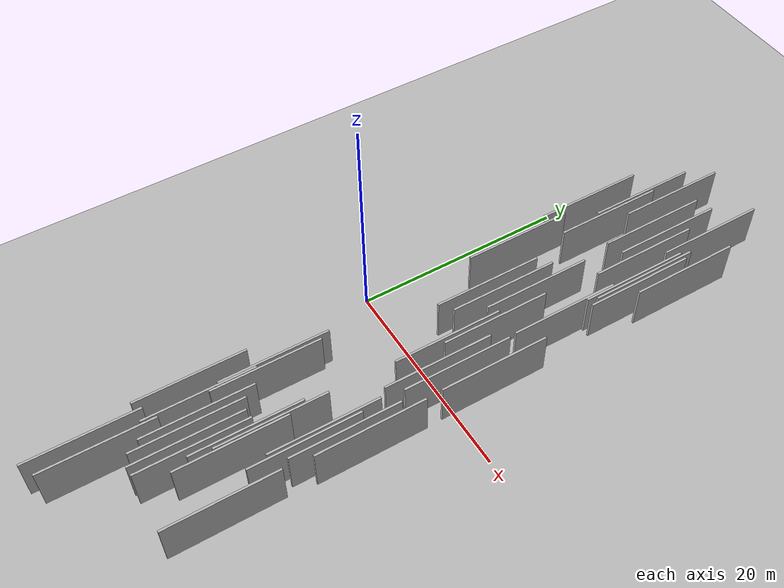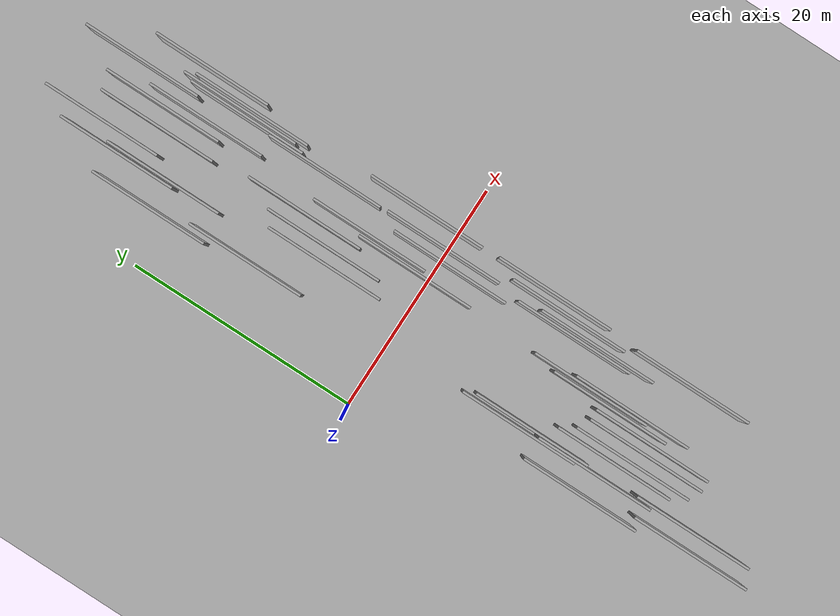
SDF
<?xml version="1.0" encoding="utf-8"?>

<sdf version="1.6">

   <world name="default">

      <gui fullscreen="0">

         <camera name="user_camera">

            <pose>-15 0 4.57585 0 0 0</pose>

            <view_controller>orbit</view_controller>

         </camera>

      </gui>

      <scene>

         <sky>

           <clouds>

             <speed>12</speed>

           </clouds>

         </sky>

         <ambient>0.4 0.4 0.4 1</ambient>

         <background>0.7 0.7 0.7 1</background>

         <shadows>1</shadows>

      </scene>

      <gravity>0 0 -9.8066</gravity>

      <magnetic_field>6e-06 2.3e-05 -4.2e-05</magnetic_field>

      <physics default="0" name="default_physics" type="ode">

         <ode>

            <solver>

               <type>quick</type>

               <iters>10</iters>

               <sor>1.0</sor>

               <use_dynamic_moi_rescaling>0</use_dynamic_moi_rescaling>

            </solver>

            <constraints>

               <cfm>0</cfm>

               <erp>0.2</erp>

               <contact_max_correcting_vel>100</contact_max_correcting_vel>

               <contact_surface_layer>0.001</contact_surface_layer>

            </constraints>

         </ode>

         <max_step_size>0.004</max_step_size>

         <real_time_factor>1</real_time_factor>

         <real_time_update_rate>250</real_time_update_rate>

      </physics>

      <light name="sun" type="directional">

         <cast_shadows>1</cast_shadows>

         <pose>0 0 10 0 0 0</pose>

         <diffuse>0.8 0.8 0.8 1</diffuse>

         <specular>0.2 0.2 0.2 1</specular>

         <attenuation>

            <range>1000</range>

            <constant>0.9</constant>

            <linear>0.01</linear>

            <quadratic>0.001</quadratic>

         </attenuation>

         <direction>-0.5 0.1 -0.9</direction>

      </light>

      <include>

         <name>ground_plane_1</name>

         <uri>model://HANNAS_ground_plane</uri>

         <pose>0 0 0  0 0 0</pose>

      </include>

      <include>

         <name>ground_plane_2</name>

         <uri>model://HANNAS_ground_plane</uri>

         <pose>100 0 0  0 0 0</pose>

      </include>

      <model name="HANNAS_wall_1">

         <static>1</static>

         <pose frame="">12.4541 20.6578 2.5 0.000000 0.000000 1.570796</pose>

         <link name="link">

            <pose frame="">0 0 2.00 0 0 0</pose>

            <collision name="collision">

               <geometry>

                  <box>

                     <size>10.00 0.2 4.00</size>

                  </box>

               </geometry>

               <max_contacts>10</max_contacts>

               <surface>

                  <contact>

                     <ode/>

                  </contact>

                  <bounce/>

                  <friction>

                     <torsional>

                        <ode/>

                     </torsional>

                     <ode/>

                  </friction>

               </surface>

            </collision>

            <visual name="visual">

               <cast_shadows>0</cast_shadows>

               <geometry>

                  <box>

                     <size>10.00 0.2 4.00</size>

                  </box>

               </geometry>

               <material>

                  <script>

                     <uri>model://HANNAS_wall/materials/scripts</uri>

                     <uri>model://HANNAS_wall/materials/textures</uri>

                     <name>vrc/HANNAS_wall</name>

                  </script>

               </material>

            </visual>

            <self_collide>0</self_collide>

            <enable_wind>0</enable_wind>

            <kinematic>0</kinematic>

         </link>

      </model>

      <model name="HANNAS_wall_2">

         <static>1</static>

         <pose frame="">13.5971 27.1170 2.5 0.000000 0.000000 1.570796</pose>

         <link name="link">

            <pose frame="">0 0 2.00 0 0 0</pose>

            <collision name="collision">

               <geometry>

                  <box>

                     <size>10.00 0.2 4.00</size>

                  </box>

               </geometry>

               <max_contacts>10</max_contacts>

               <surface>

                  <contact>

                     <ode/>

                  </contact>

                  <bounce/>

                  <friction>

                     <torsional>

                        <ode/>

                     </torsional>

                     <ode/>

                  </friction>

               </surface>

            </collision>

            <visual name="visual">

               <cast_shadows>0</cast_shadows>

               <geometry>

                  <box>

                     <size>10.00 0.2 4.00</size>

                  </box>

               </geometry>

               <material>

                  <script>

                     <uri>model://HANNAS_wall/materials/scripts</uri>

                     <uri>model://HANNAS_wall/materials/textures</uri>

                     <name>vrc/HANNAS_wall</name>

                  </script>

               </material>

            </visual>

            <self_collide>0</self_collide>

            <enable_wind>0</enable_wind>

            <kinematic>0</kinematic>

         </link>

      </model>

      <model name="HANNAS_wall_3">

         <static>1</static>

         <pose frame="">6.0778 -18.3121 2.5 0.000000 0.000000 1.570796</pose>

         <link name="link">

            <pose frame="">0 0 2.00 0 0 0</pose>

            <collision name="collision">

               <geometry>

                  <box>

                     <size>10.00 0.2 4.00</size>

                  </box>

               </geometry>

               <max_contacts>10</max_contacts>

               <surface>

                  <contact>

                     <ode/>

                  </contact>

                  <bounce/>

                  <friction>

                     <torsional>

                        <ode/>

                     </torsional>

                     <ode/>

                  </friction>

               </surface>

            </collision>

            <visual name="visual">

               <cast_shadows>0</cast_shadows>

               <geometry>

                  <box>

                     <size>10.00 0.2 4.00</size>

                  </box>

               </geometry>

               <material>

                  <script>

                     <uri>model://HANNAS_wall/materials/scripts</uri>

                     <uri>model://HANNAS_wall/materials/textures</uri>

                     <name>vrc/HANNAS_wall</name>

                  </script>

               </material>

            </visual>

            <self_collide>0</self_collide>

            <enable_wind>0</enable_wind>

            <kinematic>0</kinematic>

         </link>

      </model>

      <model name="HANNAS_wall_4">

         <static>1</static>

         <pose frame="">15.9182 22.3405 2.5 0.000000 0.000000 1.570796</pose>

         <link name="link">

            <pose frame="">0 0 2.00 0 0 0</pose>

            <collision name="collision">

               <geometry>

                  <box>

                     <size>10.00 0.2 4.00</size>

                  </box>

               </geometry>

               <max_contacts>10</max_contacts>

               <surface>

                  <contact>

                     <ode/>

                  </contact>

                  <bounce/>

                  <friction>

                     <torsional>

                        <ode/>

                     </torsional>

                     <ode/>

                  </friction>

               </surface>

            </collision>

            <visual name="visual">

               <cast_shadows>0</cast_shadows>

               <geometry>

                  <box>

                     <size>10.00 0.2 4.00</size>

                  </box>

               </geometry>

               <material>

                  <script>

                     <uri>model://HANNAS_wall/materials/scripts</uri>

                     <uri>model://HANNAS_wall/materials/textures</uri>

                     <name>vrc/HANNAS_wall</name>

                  </script>

               </material>

            </visual>

            <self_collide>0</self_collide>

            <enable_wind>0</enable_wind>

            <kinematic>0</kinematic>

         </link>

      </model>

      <model name="HANNAS_wall_5">

         <static>1</static>

         <pose frame="">8.2808 -20.3169 2.5 0.000000 0.000000 1.570796</pose>

         <link name="link">

            <pose frame="">0 0 2.00 0 0 0</pose>

            <collision name="collision">

               <geometry>

                  <box>

                     <size>10.00 0.2 4.00</size>

                  </box>

               </geometry>

               <max_contacts>10</max_contacts>

               <surface>

                  <contact>

                     <ode/>

                  </contact>

                  <bounce/>

                  <friction>

                     <torsional>

                        <ode/>

                     </torsional>

                     <ode/>

                  </friction>

               </surface>

            </collision>

            <visual name="visual">

               <cast_shadows>0</cast_shadows>

               <geometry>

                  <box>

                     <size>10.00 0.2 4.00</size>

                  </box>

               </geometry>

               <material>

                  <script>

                     <uri>model://HANNAS_wall/materials/scripts</uri>

                     <uri>model://HANNAS_wall/materials/textures</uri>

                     <name>vrc/HANNAS_wall</name>

                  </script>

               </material>

            </visual>

            <self_collide>0</self_collide>

            <enable_wind>0</enable_wind>

            <kinematic>0</kinematic>

         </link>

      </model>

      <model name="HANNAS_wall_6">

         <static>1</static>

         <pose frame="">4.9916 -27.6208 2.5 0.000000 0.000000 1.570796</pose>

         <link name="link">

            <pose frame="">0 0 2.00 0 0 0</pose>

            <collision name="collision">

               <geometry>

                  <box>

                     <size>10.00 0.2 4.00</size>

                  </box>

               </geometry>

               <max_contacts>10</max_contacts>

               <surface>

                  <contact>

                     <ode/>

                  </contact>

                  <bounce/>

                  <friction>

                     <torsional>

                        <ode/>

                     </torsional>

                     <ode/>

                  </friction>

               </surface>

            </collision>

            <visual name="visual">

               <cast_shadows>0</cast_shadows>

               <geometry>

                  <box>

                     <size>10.00 0.2 4.00</size>

                  </box>

               </geometry>

               <material>

                  <script>

                     <uri>model://HANNAS_wall/materials/scripts</uri>

                     <uri>model://HANNAS_wall/materials/textures</uri>

                     <name>vrc/HANNAS_wall</name>

                  </script>

               </material>

            </visual>

            <self_collide>0</self_collide>

            <enable_wind>0</enable_wind>

            <kinematic>0</kinematic>

         </link>

      </model>

      <model name="HANNAS_wall_7">

         <static>1</static>

         <pose frame="">14.3110 18.1891 2.5 0.000000 0.000000 1.570796</pose>

         <link name="link">

            <pose frame="">0 0 2.00 0 0 0</pose>

            <collision name="collision">

               <geometry>

                  <box>

                     <size>10.00 0.2 4.00</size>

                  </box>

               </geometry>

               <max_contacts>10</max_contacts>

               <surface>

                  <contact>

                     <ode/>

                  </contact>

                  <bounce/>

                  <friction>

                     <torsional>

                        <ode/>

                     </torsional>

                     <ode/>

                  </friction>

               </surface>

            </collision>

            <visual name="visual">

               <cast_shadows>0</cast_shadows>

               <geometry>

                  <box>

                     <size>10.00 0.2 4.00</size>

                  </box>

               </geometry>

               <material>

                  <script>

                     <uri>model://HANNAS_wall/materials/scripts</uri>

                     <uri>model://HANNAS_wall/materials/textures</uri>

                     <name>vrc/HANNAS_wall</name>

                  </script>

               </material>

            </visual>

            <self_collide>0</self_collide>

            <enable_wind>0</enable_wind>

            <kinematic>0</kinematic>

         </link>

      </model>

      <model name="HANNAS_wall_8">

         <static>1</static>

         <pose frame="">15.8094 -8.4592 2.5 0.000000 0.000000 1.570796</pose>

         <link name="link">

            <pose frame="">0 0 2.00 0 0 0</pose>

            <collision name="collision">

               <geometry>

                  <box>

                     <size>10.00 0.2 4.00</size>

                  </box>

               </geometry>

               <max_contacts>10</max_contacts>

               <surface>

                  <contact>

                     <ode/>

                  </contact>

                  <bounce/>

                  <friction>

                     <torsional>

                        <ode/>

                     </torsional>

                     <ode/>

                  </friction>

               </surface>

            </collision>

            <visual name="visual">

               <cast_shadows>0</cast_shadows>

               <geometry>

                  <box>

                     <size>10.00 0.2 4.00</size>

                  </box>

               </geometry>

               <material>

                  <script>

                     <uri>model://HANNAS_wall/materials/scripts</uri>

                     <uri>model://HANNAS_wall/materials/textures</uri>

                     <name>vrc/HANNAS_wall</name>

                  </script>

               </material>

            </visual>

            <self_collide>0</self_collide>

            <enable_wind>0</enable_wind>

            <kinematic>0</kinematic>

         </link>

      </model>

      <model name="HANNAS_wall_9">

         <static>1</static>

         <pose frame="">9.3929 8.1544 2.5 0.000000 0.000000 1.570796</pose>

         <link name="link">

            <pose frame="">0 0 2.00 0 0 0</pose>

            <collision name="collision">

               <geometry>

                  <box>

                     <size>10.00 0.2 4.00</size>

                  </box>

               </geometry>

               <max_contacts>10</max_contacts>

               <surface>

                  <contact>

                     <ode/>

                  </contact>

                  <bounce/>

                  <friction>

                     <torsional>

                        <ode/>

                     </torsional>

                     <ode/>

                  </friction>

               </surface>

            </collision>

            <visual name="visual">

               <cast_shadows>0</cast_shadows>

               <geometry>

                  <box>

                     <size>10.00 0.2 4.00</size>

                  </box>

               </geometry>

               <material>

                  <script>

                     <uri>model://HANNAS_wall/materials/scripts</uri>

                     <uri>model://HANNAS_wall/materials/textures</uri>

                     <name>vrc/HANNAS_wall</name>

                  </script>

               </material>

            </visual>

            <self_collide>0</self_collide>

            <enable_wind>0</enable_wind>

            <kinematic>0</kinematic>

         </link>

      </model>

      <model name="HANNAS_wall_10">

         <static>1</static>

         <pose frame="">11.5870 23.9540 2.5 0.000000 0.000000 1.570796</pose>

         <link name="link">

            <pose frame="">0 0 2.00 0 0 0</pose>

            <collision name="collision">

               <geometry>

                  <box>

                     <size>10.00 0.2 4.00</size>

                  </box>

               </geometry>

               <max_contacts>10</max_contacts>

               <surface>

                  <contact>

                     <ode/>

                  </contact>

                  <bounce/>

                  <friction>

                     <torsional>

                        <ode/>

                     </torsional>

                     <ode/>

                  </friction>

               </surface>

            </collision>

            <visual name="visual">

               <cast_shadows>0</cast_shadows>

               <geometry>

                  <box>

                     <size>10.00 0.2 4.00</size>

                  </box>

               </geometry>

               <material>

                  <script>

                     <uri>model://HANNAS_wall/materials/scripts</uri>

                     <uri>model://HANNAS_wall/materials/textures</uri>

                     <name>vrc/HANNAS_wall</name>

                  </script>

               </material>

            </visual>

            <self_collide>0</self_collide>

            <enable_wind>0</enable_wind>

            <kinematic>0</kinematic>

         </link>

      </model>

      <model name="HANNAS_wall_11">

         <static>1</static>

         <pose frame="">6.7561 24.9841 2.5 0.000000 0.000000 1.570796</pose>

         <link name="link">

            <pose frame="">0 0 2.00 0 0 0</pose>

            <collision name="collision">

               <geometry>

                  <box>

                     <size>10.00 0.2 4.00</size>

                  </box>

               </geometry>

               <max_contacts>10</max_contacts>

               <surface>

                  <contact>

                     <ode/>

                  </contact>

                  <bounce/>

                  <friction>

                     <torsional>

                        <ode/>

                     </torsional>

                     <ode/>

                  </friction>

               </surface>

            </collision>

            <visual name="visual">

               <cast_shadows>0</cast_shadows>

               <geometry>

                  <box>

                     <size>10.00 0.2 4.00</size>

                  </box>

               </geometry>

               <material>

                  <script>

                     <uri>model://HANNAS_wall/materials/scripts</uri>

                     <uri>model://HANNAS_wall/materials/textures</uri>

                     <name>vrc/HANNAS_wall</name>

                  </script>

               </material>

            </visual>

            <self_collide>0</self_collide>

            <enable_wind>0</enable_wind>

            <kinematic>0</kinematic>

         </link>

      </model>

      <model name="HANNAS_wall_12">

         <static>1</static>

         <pose frame="">4.5698 20.7180 2.5 0.000000 0.000000 1.570796</pose>

         <link name="link">

            <pose frame="">0 0 2.00 0 0 0</pose>

            <collision name="collision">

               <geometry>

                  <box>

                     <size>10.00 0.2 4.00</size>

                  </box>

               </geometry>

               <max_contacts>10</max_contacts>

               <surface>

                  <contact>

                     <ode/>

                  </contact>

                  <bounce/>

                  <friction>

                     <torsional>

                        <ode/>

                     </torsional>

                     <ode/>

                  </friction>

               </surface>

            </collision>

            <visual name="visual">

               <cast_shadows>0</cast_shadows>

               <geometry>

                  <box>

                     <size>10.00 0.2 4.00</size>

                  </box>

               </geometry>

               <material>

                  <script>

                     <uri>model://HANNAS_wall/materials/scripts</uri>

                     <uri>model://HANNAS_wall/materials/textures</uri>

                     <name>vrc/HANNAS_wall</name>

                  </script>

               </material>

            </visual>

            <self_collide>0</self_collide>

            <enable_wind>0</enable_wind>

            <kinematic>0</kinematic>

         </link>

      </model>

      <model name="HANNAS_wall_13">

         <static>1</static>

         <pose frame="">11.8927 5.6557 2.5 0.000000 0.000000 1.570796</pose>

         <link name="link">

            <pose frame="">0 0 2.00 0 0 0</pose>

            <collision name="collision">

               <geometry>

                  <box>

                     <size>10.00 0.2 4.00</size>

                  </box>

               </geometry>

               <max_contacts>10</max_contacts>

               <surface>

                  <contact>

                     <ode/>

                  </contact>

                  <bounce/>

                  <friction>

                     <torsional>

                        <ode/>

                     </torsional>

                     <ode/>

                  </friction>

               </surface>

            </collision>

            <visual name="visual">

               <cast_shadows>0</cast_shadows>

               <geometry>

                  <box>

                     <size>10.00 0.2 4.00</size>

                  </box>

               </geometry>

               <material>

                  <script>

                     <uri>model://HANNAS_wall/materials/scripts</uri>

                     <uri>model://HANNAS_wall/materials/textures</uri>

                     <name>vrc/HANNAS_wall</name>

                  </script>

               </material>

            </visual>

            <self_collide>0</self_collide>

            <enable_wind>0</enable_wind>

            <kinematic>0</kinematic>

         </link>

      </model>

      <model name="HANNAS_wall_14">

         <static>1</static>

         <pose frame="">10.6268 10.6538 2.5 0.000000 0.000000 1.570796</pose>

         <link name="link">

            <pose frame="">0 0 2.00 0 0 0</pose>

            <collision name="collision">

               <geometry>

                  <box>

                     <size>10.00 0.2 4.00</size>

                  </box>

               </geometry>

               <max_contacts>10</max_contacts>

               <surface>

                  <contact>

                     <ode/>

                  </contact>

                  <bounce/>

                  <friction>

                     <torsional>

                        <ode/>

                     </torsional>

                     <ode/>

                  </friction>

               </surface>

            </collision>

            <visual name="visual">

               <cast_shadows>0</cast_shadows>

               <geometry>

                  <box>

                     <size>10.00 0.2 4.00</size>

                  </box>

               </geometry>

               <material>

                  <script>

                     <uri>model://HANNAS_wall/materials/scripts</uri>

                     <uri>model://HANNAS_wall/materials/textures</uri>

                     <name>vrc/HANNAS_wall</name>

                  </script>

               </material>

            </visual>

            <self_collide>0</self_collide>

            <enable_wind>0</enable_wind>

            <kinematic>0</kinematic>

         </link>

      </model>

      <model name="HANNAS_wall_15">

         <static>1</static>

         <pose frame="">10.8824 -16.5831 2.5 0.000000 0.000000 1.570796</pose>

         <link name="link">

            <pose frame="">0 0 2.00 0 0 0</pose>

            <collision name="collision">

               <geometry>

                  <box>

                     <size>10.00 0.2 4.00</size>

                  </box>

               </geometry>

               <max_contacts>10</max_contacts>

               <surface>

                  <contact>

                     <ode/>

                  </contact>

                  <bounce/>

                  <friction>

                     <torsional>

                        <ode/>

                     </torsional>

                     <ode/>

                  </friction>

               </surface>

            </collision>

            <visual name="visual">

               <cast_shadows>0</cast_shadows>

               <geometry>

                  <box>

                     <size>10.00 0.2 4.00</size>

                  </box>

               </geometry>

               <material>

                  <script>

                     <uri>model://HANNAS_wall/materials/scripts</uri>

                     <uri>model://HANNAS_wall/materials/textures</uri>

                     <name>vrc/HANNAS_wall</name>

                  </script>

               </material>

            </visual>

            <self_collide>0</self_collide>

            <enable_wind>0</enable_wind>

            <kinematic>0</kinematic>

         </link>

      </model>

      <model name="HANNAS_wall_16">

         <static>1</static>

         <pose frame="">8.2525 7.3279 2.5 0.000000 0.000000 1.570796</pose>

         <link name="link">

            <pose frame="">0 0 2.00 0 0 0</pose>

            <collision name="collision">

               <geometry>

                  <box>

                     <size>10.00 0.2 4.00</size>

                  </box>

               </geometry>

               <max_contacts>10</max_contacts>

               <surface>

                  <contact>

                     <ode/>

                  </contact>

                  <bounce/>

                  <friction>

                     <torsional>

                        <ode/>

                     </torsional>

                     <ode/>

                  </friction>

               </surface>

            </collision>

            <visual name="visual">

               <cast_shadows>0</cast_shadows>

               <geometry>

                  <box>

                     <size>10.00 0.2 4.00</size>

                  </box>

               </geometry>

               <material>

                  <script>

                     <uri>model://HANNAS_wall/materials/scripts</uri>

                     <uri>model://HANNAS_wall/materials/textures</uri>

                     <name>vrc/HANNAS_wall</name>

                  </script>

               </material>

            </visual>

            <self_collide>0</self_collide>

            <enable_wind>0</enable_wind>

            <kinematic>0</kinematic>

         </link>

      </model>

      <model name="HANNAS_wall_17">

         <static>1</static>

         <pose frame="">10.2123 -20.7871 2.5 0.000000 0.000000 1.570796</pose>

         <link name="link">

            <pose frame="">0 0 2.00 0 0 0</pose>

            <collision name="collision">

               <geometry>

                  <box>

                     <size>10.00 0.2 4.00</size>

                  </box>

               </geometry>

               <max_contacts>10</max_contacts>

               <surface>

                  <contact>

                     <ode/>

                  </contact>

                  <bounce/>

                  <friction>

                     <torsional>

                        <ode/>

                     </torsional>

                     <ode/>

                  </friction>

               </surface>

            </collision>

            <visual name="visual">

               <cast_shadows>0</cast_shadows>

               <geometry>

                  <box>

                     <size>10.00 0.2 4.00</size>

                  </box>

               </geometry>

               <material>

                  <script>

                     <uri>model://HANNAS_wall/materials/scripts</uri>

                     <uri>model://HANNAS_wall/materials/textures</uri>

                     <name>vrc/HANNAS_wall</name>

                  </script>

               </material>

            </visual>

            <self_collide>0</self_collide>

            <enable_wind>0</enable_wind>

            <kinematic>0</kinematic>

         </link>

      </model>

      <model name="HANNAS_wall_18">

         <static>1</static>

         <pose frame="">14.6173 19.0087 2.5 0.000000 0.000000 1.570796</pose>

         <link name="link">

            <pose frame="">0 0 2.00 0 0 0</pose>

            <collision name="collision">

               <geometry>

                  <box>

                     <size>10.00 0.2 4.00</size>

                  </box>

               </geometry>

               <max_contacts>10</max_contacts>

               <surface>

                  <contact>

                     <ode/>

                  </contact>

                  <bounce/>

                  <friction>

                     <torsional>

                        <ode/>

                     </torsional>

                     <ode/>

                  </friction>

               </surface>

            </collision>

            <visual name="visual">

               <cast_shadows>0</cast_shadows>

               <geometry>

                  <box>

                     <size>10.00 0.2 4.00</size>

                  </box>

               </geometry>

               <material>

                  <script>

                     <uri>model://HANNAS_wall/materials/scripts</uri>

                     <uri>model://HANNAS_wall/materials/textures</uri>

                     <name>vrc/HANNAS_wall</name>

                  </script>

               </material>

            </visual>

            <self_collide>0</self_collide>

            <enable_wind>0</enable_wind>

            <kinematic>0</kinematic>

         </link>

      </model>

      <model name="HANNAS_wall_19">

         <static>1</static>

         <pose frame="">7.5287 -19.1301 2.5 0.000000 0.000000 1.570796</pose>

         <link name="link">

            <pose frame="">0 0 2.00 0 0 0</pose>

            <collision name="collision">

               <geometry>

                  <box>

                     <size>10.00 0.2 4.00</size>

                  </box>

               </geometry>

               <max_contacts>10</max_contacts>

               <surface>

                  <contact>

                     <ode/>

                  </contact>

                  <bounce/>

                  <friction>

                     <torsional>

                        <ode/>

                     </torsional>

                     <ode/>

                  </friction>

               </surface>

            </collision>

            <visual name="visual">

               <cast_shadows>0</cast_shadows>

               <geometry>

                  <box>

                     <size>10.00 0.2 4.00</size>

                  </box>

               </geometry>

               <material>

                  <script>

                     <uri>model://HANNAS_wall/materials/scripts</uri>

                     <uri>model://HANNAS_wall/materials/textures</uri>

                     <name>vrc/HANNAS_wall</name>

                  </script>

               </material>

            </visual>

            <self_collide>0</self_collide>

            <enable_wind>0</enable_wind>

            <kinematic>0</kinematic>

         </link>

      </model>

      <model name="HANNAS_wall_20">

         <static>1</static>

         <pose frame="">15.0005 -10.2229 2.5 0.000000 0.000000 1.570796</pose>

         <link name="link">

            <pose frame="">0 0 2.00 0 0 0</pose>

            <collision name="collision">

               <geometry>

                  <box>

                     <size>10.00 0.2 4.00</size>

                  </box>

               </geometry>

               <max_contacts>10</max_contacts>

               <surface>

                  <contact>

                     <ode/>

                  </contact>

                  <bounce/>

                  <friction>

                     <torsional>

                        <ode/>

                     </torsional>

                     <ode/>

                  </friction>

               </surface>

            </collision>

            <visual name="visual">

               <cast_shadows>0</cast_shadows>

               <geometry>

                  <box>

                     <size>10.00 0.2 4.00</size>

                  </box>

               </geometry>

               <material>

                  <script>

                     <uri>model://HANNAS_wall/materials/scripts</uri>

                     <uri>model://HANNAS_wall/materials/textures</uri>

                     <name>vrc/HANNAS_wall</name>

                  </script>

               </material>

            </visual>

            <self_collide>0</self_collide>

            <enable_wind>0</enable_wind>

            <kinematic>0</kinematic>

         </link>

      </model>

      <model name="HANNAS_wall_21">

         <static>1</static>

         <pose frame="">14.2171 -13.3017 2.5 0.000000 0.000000 1.570796</pose>

         <link name="link">

            <pose frame="">0 0 2.00 0 0 0</pose>

            <collision name="collision">

               <geometry>

                  <box>

                     <size>10.00 0.2 4.00</size>

                  </box>

               </geometry>

               <max_contacts>10</max_contacts>

               <surface>

                  <contact>

                     <ode/>

                  </contact>

                  <bounce/>

                  <friction>

                     <torsional>

                        <ode/>

                     </torsional>

                     <ode/>

                  </friction>

               </surface>

            </collision>

            <visual name="visual">

               <cast_shadows>0</cast_shadows>

               <geometry>

                  <box>

                     <size>10.00 0.2 4.00</size>

                  </box>

               </geometry>

               <material>

                  <script>

                     <uri>model://HANNAS_wall/materials/scripts</uri>

                     <uri>model://HANNAS_wall/materials/textures</uri>

                     <name>vrc/HANNAS_wall</name>

                  </script>

               </material>

            </visual>

            <self_collide>0</self_collide>

            <enable_wind>0</enable_wind>

            <kinematic>0</kinematic>

         </link>

      </model>

      <model name="HANNAS_wall_22">

         <static>1</static>

         <pose frame="">15.5839 -20.9502 2.5 0.000000 0.000000 1.570796</pose>

         <link name="link">

            <pose frame="">0 0 2.00 0 0 0</pose>

            <collision name="collision">

               <geometry>

                  <box>

                     <size>10.00 0.2 4.00</size>

                  </box>

               </geometry>

               <max_contacts>10</max_contacts>

               <surface>

                  <contact>

                     <ode/>

                  </contact>

                  <bounce/>

                  <friction>

                     <torsional>

                        <ode/>

                     </torsional>

                     <ode/>

                  </friction>

               </surface>

            </collision>

            <visual name="visual">

               <cast_shadows>0</cast_shadows>

               <geometry>

                  <box>

                     <size>10.00 0.2 4.00</size>

                  </box>

               </geometry>

               <material>

                  <script>

                     <uri>model://HANNAS_wall/materials/scripts</uri>

                     <uri>model://HANNAS_wall/materials/textures</uri>

                     <name>vrc/HANNAS_wall</name>

                  </script>

               </material>

            </visual>

            <self_collide>0</self_collide>

            <enable_wind>0</enable_wind>

            <kinematic>0</kinematic>

         </link>

      </model>

      <model name="HANNAS_wall_23">

         <static>1</static>

         <pose frame="">14.9914 18.1844 2.5 0.000000 0.000000 1.570796</pose>

         <link name="link">

            <pose frame="">0 0 2.00 0 0 0</pose>

            <collision name="collision">

               <geometry>

                  <box>

                     <size>10.00 0.2 4.00</size>

                  </box>

               </geometry>

               <max_contacts>10</max_contacts>

               <surface>

                  <contact>

                     <ode/>

                  </contact>

                  <bounce/>

                  <friction>

                     <torsional>

                        <ode/>

                     </torsional>

                     <ode/>

                  </friction>

               </surface>

            </collision>

            <visual name="visual">

               <cast_shadows>0</cast_shadows>

               <geometry>

                  <box>

                     <size>10.00 0.2 4.00</size>

                  </box>

               </geometry>

               <material>

                  <script>

                     <uri>model://HANNAS_wall/materials/scripts</uri>

                     <uri>model://HANNAS_wall/materials/textures</uri>

                     <name>vrc/HANNAS_wall</name>

                  </script>

               </material>

            </visual>

            <self_collide>0</self_collide>

            <enable_wind>0</enable_wind>

            <kinematic>0</kinematic>

         </link>

      </model>

      <model name="HANNAS_wall_24">

         <static>1</static>

         <pose frame="">9.3542 -20.8267 2.5 0.000000 0.000000 1.570796</pose>

         <link name="link">

            <pose frame="">0 0 2.00 0 0 0</pose>

            <collision name="collision">

               <geometry>

                  <box>

                     <size>10.00 0.2 4.00</size>

                  </box>

               </geometry>

               <max_contacts>10</max_contacts>

               <surface>

                  <contact>

                     <ode/>

                  </contact>

                  <bounce/>

                  <friction>

                     <torsional>

                        <ode/>

                     </torsional>

                     <ode/>

                  </friction>

               </surface>

            </collision>

            <visual name="visual">

               <cast_shadows>0</cast_shadows>

               <geometry>

                  <box>

                     <size>10.00 0.2 4.00</size>

                  </box>

               </geometry>

               <material>

                  <script>

                     <uri>model://HANNAS_wall/materials/scripts</uri>

                     <uri>model://HANNAS_wall/materials/textures</uri>

                     <name>vrc/HANNAS_wall</name>

                  </script>

               </material>

            </visual>

            <self_collide>0</self_collide>

            <enable_wind>0</enable_wind>

            <kinematic>0</kinematic>

         </link>

      </model>

      <model name="HANNAS_wall_25">

         <static>1</static>

         <pose frame="">4.1508 -18.2466 2.5 0.000000 0.000000 1.570796</pose>

         <link name="link">

            <pose frame="">0 0 2.00 0 0 0</pose>

            <collision name="collision">

               <geometry>

                  <box>

                     <size>10.00 0.2 4.00</size>

                  </box>

               </geometry>

               <max_contacts>10</max_contacts>

               <surface>

                  <contact>

                     <ode/>

                  </contact>

                  <bounce/>

                  <friction>

                     <torsional>

                        <ode/>

                     </torsional>

                     <ode/>

                  </friction>

               </surface>

            </collision>

            <visual name="visual">

               <cast_shadows>0</cast_shadows>

               <geometry>

                  <box>

                     <size>10.00 0.2 4.00</size>

                  </box>

               </geometry>

               <material>

                  <script>

                     <uri>model://HANNAS_wall/materials/scripts</uri>

                     <uri>model://HANNAS_wall/materials/textures</uri>

                     <name>vrc/HANNAS_wall</name>

                  </script>

               </material>

            </visual>

            <self_collide>0</self_collide>

            <enable_wind>0</enable_wind>

            <kinematic>0</kinematic>

         </link>

      </model>

      <model name="HANNAS_wall_26">

         <static>1</static>

         <pose frame="">13.1844 -0.7295 2.5 0.000000 0.000000 1.570796</pose>

         <link name="link">

            <pose frame="">0 0 2.00 0 0 0</pose>

            <collision name="collision">

               <geometry>

                  <box>

                     <size>10.00 0.2 4.00</size>

                  </box>

               </geometry>

               <max_contacts>10</max_contacts>

               <surface>

                  <contact>

                     <ode/>

                  </contact>

                  <bounce/>

                  <friction>

                     <torsional>

                        <ode/>

                     </torsional>

                     <ode/>

                  </friction>

               </surface>

            </collision>

            <visual name="visual">

               <cast_shadows>0</cast_shadows>

               <geometry>

                  <box>

                     <size>10.00 0.2 4.00</size>

                  </box>

               </geometry>

               <material>

                  <script>

                     <uri>model://HANNAS_wall/materials/scripts</uri>

                     <uri>model://HANNAS_wall/materials/textures</uri>

                     <name>vrc/HANNAS_wall</name>

                  </script>

               </material>

            </visual>

            <self_collide>0</self_collide>

            <enable_wind>0</enable_wind>

            <kinematic>0</kinematic>

         </link>

      </model>

      <model name="HANNAS_wall_27">

         <static>1</static>

         <pose frame="">10.0969 23.5168 2.5 0.000000 0.000000 1.570796</pose>

         <link name="link">

            <pose frame="">0 0 2.00 0 0 0</pose>

            <collision name="collision">

               <geometry>

                  <box>

                     <size>10.00 0.2 4.00</size>

                  </box>

               </geometry>

               <max_contacts>10</max_contacts>

               <surface>

                  <contact>

                     <ode/>

                  </contact>

                  <bounce/>

                  <friction>

                     <torsional>

                        <ode/>

                     </torsional>

                     <ode/>

                  </friction>

               </surface>

            </collision>

            <visual name="visual">

               <cast_shadows>0</cast_shadows>

               <geometry>

                  <box>

                     <size>10.00 0.2 4.00</size>

                  </box>

               </geometry>

               <material>

                  <script>

                     <uri>model://HANNAS_wall/materials/scripts</uri>

                     <uri>model://HANNAS_wall/materials/textures</uri>

                     <name>vrc/HANNAS_wall</name>

                  </script>

               </material>

            </visual>

            <self_collide>0</self_collide>

            <enable_wind>0</enable_wind>

            <kinematic>0</kinematic>

         </link>

      </model>

      <model name="HANNAS_wall_28">

         <static>1</static>

         <pose frame="">6.3050 -12.5777 2.5 0.000000 0.000000 1.570796</pose>

         <link name="link">

            <pose frame="">0 0 2.00 0 0 0</pose>

            <collision name="collision">

               <geometry>

                  <box>

                     <size>10.00 0.2 4.00</size>

                  </box>

               </geometry>

               <max_contacts>10</max_contacts>

               <surface>

                  <contact>

                     <ode/>

                  </contact>

                  <bounce/>

                  <friction>

                     <torsional>

                        <ode/>

                     </torsional>

                     <ode/>

                  </friction>

               </surface>

            </collision>

            <visual name="visual">

               <cast_shadows>0</cast_shadows>

               <geometry>

                  <box>

                     <size>10.00 0.2 4.00</size>

                  </box>

               </geometry>

               <material>

                  <script>

                     <uri>model://HANNAS_wall/materials/scripts</uri>

                     <uri>model://HANNAS_wall/materials/textures</uri>

                     <name>vrc/HANNAS_wall</name>

                  </script>

               </material>

            </visual>

            <self_collide>0</self_collide>

            <enable_wind>0</enable_wind>

            <kinematic>0</kinematic>

         </link>

      </model>

      <model name="HANNAS_wall_29">

         <static>1</static>

         <pose frame="">8.2125 27.2568 2.5 0.000000 0.000000 1.570796</pose>

         <link name="link">

            <pose frame="">0 0 2.00 0 0 0</pose>

            <collision name="collision">

               <geometry>

                  <box>

                     <size>10.00 0.2 4.00</size>

                  </box>

               </geometry>

               <max_contacts>10</max_contacts>

               <surface>

                  <contact>

                     <ode/>

                  </contact>

                  <bounce/>

                  <friction>

                     <torsional>

                        <ode/>

                     </torsional>

                     <ode/>

                  </friction>

               </surface>

            </collision>

            <visual name="visual">

               <cast_shadows>0</cast_shadows>

               <geometry>

                  <box>

                     <size>10.00 0.2 4.00</size>

                  </box>

               </geometry>

               <material>

                  <script>

                     <uri>model://HANNAS_wall/materials/scripts</uri>

                     <uri>model://HANNAS_wall/materials/textures</uri>

                     <name>vrc/HANNAS_wall</name>

                  </script>

               </material>

            </visual>

            <self_collide>0</self_collide>

            <enable_wind>0</enable_wind>

            <kinematic>0</kinematic>

         </link>

      </model>

      <model name="HANNAS_wall_30">

         <static>1</static>

         <pose frame="">11.2568 -14.6252 2.5 0.000000 0.000000 1.570796</pose>

         <link name="link">

            <pose frame="">0 0 2.00 0 0 0</pose>

            <collision name="collision">

               <geometry>

                  <box>

                     <size>10.00 0.2 4.00</size>

                  </box>

               </geometry>

               <max_contacts>10</max_contacts>

               <surface>

                  <contact>

                     <ode/>

                  </contact>

                  <bounce/>

                  <friction>

                     <torsional>

                        <ode/>

                     </torsional>

                     <ode/>

                  </friction>

               </surface>

            </collision>

            <visual name="visual">

               <cast_shadows>0</cast_shadows>

               <geometry>

                  <box>

                     <size>10.00 0.2 4.00</size>

                  </box>

               </geometry>

               <material>

                  <script>

                     <uri>model://HANNAS_wall/materials/scripts</uri>

                     <uri>model://HANNAS_wall/materials/textures</uri>

                     <name>vrc/HANNAS_wall</name>

                  </script>

               </material>

            </visual>

            <self_collide>0</self_collide>

            <enable_wind>0</enable_wind>

            <kinematic>0</kinematic>

         </link>

      </model>

      <model name="HANNAS_wall_31">

         <static>1</static>

         <pose frame="">6.3940 -26.9403 2.5 0.000000 0.000000 1.570796</pose>

         <link name="link">

            <pose frame="">0 0 2.00 0 0 0</pose>

            <collision name="collision">

               <geometry>

                  <box>

                     <size>10.00 0.2 4.00</size>

                  </box>

               </geometry>

               <max_contacts>10</max_contacts>

               <surface>

                  <contact>

                     <ode/>

                  </contact>

                  <bounce/>

                  <friction>

                     <torsional>

                        <ode/>

                     </torsional>

                     <ode/>

                  </friction>

               </surface>

            </collision>

            <visual name="visual">

               <cast_shadows>0</cast_shadows>

               <geometry>

                  <box>

                     <size>10.00 0.2 4.00</size>

                  </box>

               </geometry>

               <material>

                  <script>

                     <uri>model://HANNAS_wall/materials/scripts</uri>

                     <uri>model://HANNAS_wall/materials/textures</uri>

                     <name>vrc/HANNAS_wall</name>

                  </script>

               </material>

            </visual>

            <self_collide>0</self_collide>

            <enable_wind>0</enable_wind>

            <kinematic>0</kinematic>

         </link>

      </model>

      <model name="HANNAS_wall_32">

         <static>1</static>

         <pose frame="">13.8480 -11.4380 2.5 0.000000 0.000000 1.570796</pose>

         <link name="link">

            <pose frame="">0 0 2.00 0 0 0</pose>

            <collision name="collision">

               <geometry>

                  <box>

                     <size>10.00 0.2 4.00</size>

                  </box>

               </geometry>

               <max_contacts>10</max_contacts>

               <surface>

                  <contact>

                     <ode/>

                  </contact>

                  <bounce/>

                  <friction>

                     <torsional>

                        <ode/>

                     </torsional>

                     <ode/>

                  </friction>

               </surface>

            </collision>

            <visual name="visual">

               <cast_shadows>0</cast_shadows>

               <geometry>

                  <box>

                     <size>10.00 0.2 4.00</size>

                  </box>

               </geometry>

               <material>

                  <script>

                     <uri>model://HANNAS_wall/materials/scripts</uri>

                     <uri>model://HANNAS_wall/materials/textures</uri>

                     <name>vrc/HANNAS_wall</name>

                  </script>

               </material>

            </visual>

            <self_collide>0</self_collide>

            <enable_wind>0</enable_wind>

            <kinematic>0</kinematic>

         </link>

      </model>

      <model name="HANNAS_wall_33">

         <static>1</static>

         <pose frame="">14.1765 0.4824 2.5 0.000000 0.000000 1.570796</pose>

         <link name="link">

            <pose frame="">0 0 2.00 0 0 0</pose>

            <collision name="collision">

               <geometry>

                  <box>

                     <size>10.00 0.2 4.00</size>

                  </box>

               </geometry>

               <max_contacts>10</max_contacts>

               <surface>

                  <contact>

                     <ode/>

                  </contact>

                  <bounce/>

                  <friction>

                     <torsional>

                        <ode/>

                     </torsional>

                     <ode/>

                  </friction>

               </surface>

            </collision>

            <visual name="visual">

               <cast_shadows>0</cast_shadows>

               <geometry>

                  <box>

                     <size>10.00 0.2 4.00</size>

                  </box>

               </geometry>

               <material>

                  <script>

                     <uri>model://HANNAS_wall/materials/scripts</uri>

                     <uri>model://HANNAS_wall/materials/textures</uri>

                     <name>vrc/HANNAS_wall</name>

                  </script>

               </material>

            </visual>

            <self_collide>0</self_collide>

            <enable_wind>0</enable_wind>

            <kinematic>0</kinematic>

         </link>

      </model>

      <model name="HANNAS_wall_34">

         <static>1</static>

         <pose frame="">5.8762 -11.6508 2.5 0.000000 0.000000 1.570796</pose>

         <link name="link">

            <pose frame="">0 0 2.00 0 0 0</pose>

            <collision name="collision">

               <geometry>

                  <box>

                     <size>10.00 0.2 4.00</size>

                  </box>

               </geometry>

               <max_contacts>10</max_contacts>

               <surface>

                  <contact>

                     <ode/>

                  </contact>

                  <bounce/>

                  <friction>

                     <torsional>

                        <ode/>

                     </torsional>

                     <ode/>

                  </friction>

               </surface>

            </collision>

            <visual name="visual">

               <cast_shadows>0</cast_shadows>

               <geometry>

                  <box>

                     <size>10.00 0.2 4.00</size>

                  </box>

               </geometry>

               <material>

                  <script>

                     <uri>model://HANNAS_wall/materials/scripts</uri>

                     <uri>model://HANNAS_wall/materials/textures</uri>

                     <name>vrc/HANNAS_wall</name>

                  </script>

               </material>

            </visual>

            <self_collide>0</self_collide>

            <enable_wind>0</enable_wind>

            <kinematic>0</kinematic>

         </link>

      </model>

      <model name="HANNAS_wall_35">

         <static>1</static>

         <pose frame="">7.0718 21.0249 2.5 0.000000 0.000000 1.570796</pose>

         <link name="link">

            <pose frame="">0 0 2.00 0 0 0</pose>

            <collision name="collision">

               <geometry>

                  <box>

                     <size>10.00 0.2 4.00</size>

                  </box>

               </geometry>

               <max_contacts>10</max_contacts>

               <surface>

                  <contact>

                     <ode/>

                  </contact>

                  <bounce/>

                  <friction>

                     <torsional>

                        <ode/>

                     </torsional>

                     <ode/>

                  </friction>

               </surface>

            </collision>

            <visual name="visual">

               <cast_shadows>0</cast_shadows>

               <geometry>

                  <box>

                     <size>10.00 0.2 4.00</size>

                  </box>

               </geometry>

               <material>

                  <script>

                     <uri>model://HANNAS_wall/materials/scripts</uri>

                     <uri>model://HANNAS_wall/materials/textures</uri>

                     <name>vrc/HANNAS_wall</name>

                  </script>

               </material>

            </visual>

            <self_collide>0</self_collide>

            <enable_wind>0</enable_wind>

            <kinematic>0</kinematic>

         </link>

      </model>

      <model name="HANNAS_wall_36">

         <static>1</static>

         <pose frame="">5.2538 12.4773 2.5 0.000000 0.000000 1.570796</pose>

         <link name="link">

            <pose frame="">0 0 2.00 0 0 0</pose>

            <collision name="collision">

               <geometry>

                  <box>

                     <size>10.00 0.2 4.00</size>

                  </box>

               </geometry>

               <max_contacts>10</max_contacts>

               <surface>

                  <contact>

                     <ode/>

                  </contact>

                  <bounce/>

                  <friction>

                     <torsional>

                        <ode/>

                     </torsional>

                     <ode/>

                  </friction>

               </surface>

            </collision>

            <visual name="visual">

               <cast_shadows>0</cast_shadows>

               <geometry>

                  <box>

                     <size>10.00 0.2 4.00</size>

                  </box>

               </geometry>

               <material>

                  <script>

                     <uri>model://HANNAS_wall/materials/scripts</uri>

                     <uri>model://HANNAS_wall/materials/textures</uri>

                     <name>vrc/HANNAS_wall</name>

                  </script>

               </material>

            </visual>

            <self_collide>0</self_collide>

            <enable_wind>0</enable_wind>

            <kinematic>0</kinematic>

         </link>

      </model>

      <model name="HANNAS_wall_37">

         <static>1</static>

         <pose frame="">14.0892 11.0780 2.5 0.000000 0.000000 1.570796</pose>

         <link name="link">

            <pose frame="">0 0 2.00 0 0 0</pose>

            <collision name="collision">

               <geometry>

                  <box>

                     <size>10.00 0.2 4.00</size>

                  </box>

               </geometry>

               <max_contacts>10</max_contacts>

               <surface>

                  <contact>

                     <ode/>

                  </contact>

                  <bounce/>

                  <friction>

                     <torsional>

                        <ode/>

                     </torsional>

                     <ode/>

                  </friction>

               </surface>

            </collision>

            <visual name="visual">

               <cast_shadows>0</cast_shadows>

               <geometry>

                  <box>

                     <size>10.00 0.2 4.00</size>

                  </box>

               </geometry>

               <material>

                  <script>

                     <uri>model://HANNAS_wall/materials/scripts</uri>

                     <uri>model://HANNAS_wall/materials/textures</uri>

                     <name>vrc/HANNAS_wall</name>

                  </script>

               </material>

            </visual>

            <self_collide>0</self_collide>

            <enable_wind>0</enable_wind>

            <kinematic>0</kinematic>

         </link>

      </model>

      <model name="HANNAS_wall_38">

         <static>1</static>

         <pose frame="">15.7354 2.9768 2.5 0.000000 0.000000 1.570796</pose>

         <link name="link">

            <pose frame="">0 0 2.00 0 0 0</pose>

            <collision name="collision">

               <geometry>

                  <box>

                     <size>10.00 0.2 4.00</size>

                  </box>

               </geometry>

               <max_contacts>10</max_contacts>

               <surface>

                  <contact>

                     <ode/>

                  </contact>

                  <bounce/>

                  <friction>

                     <torsional>

                        <ode/>

                     </torsional>

                     <ode/>

                  </friction>

               </surface>

            </collision>

            <visual name="visual">

               <cast_shadows>0</cast_shadows>

               <geometry>

                  <box>

                     <size>10.00 0.2 4.00</size>

                  </box>

               </geometry>

               <material>

                  <script>

                     <uri>model://HANNAS_wall/materials/scripts</uri>

                     <uri>model://HANNAS_wall/materials/textures</uri>

                     <name>vrc/HANNAS_wall</name>

                  </script>

               </material>

            </visual>

            <self_collide>0</self_collide>

            <enable_wind>0</enable_wind>

            <kinematic>0</kinematic>

         </link>

      </model>

      <model name="HANNAS_wall_39">

         <static>1</static>

         <pose frame="">11.4410 1.2914 2.5 0.000000 0.000000 1.570796</pose>

         <link name="link">

            <pose frame="">0 0 2.00 0 0 0</pose>

            <collision name="collision">

               <geometry>

                  <box>

                     <size>10.00 0.2 4.00</size>

                  </box>

               </geometry>

               <max_contacts>10</max_contacts>

               <surface>

                  <contact>

                     <ode/>

                  </contact>

                  <bounce/>

                  <friction>

                     <torsional>

                        <ode/>

                     </torsional>

                     <ode/>

                  </friction>

               </surface>

            </collision>

            <visual name="visual">

               <cast_shadows>0</cast_shadows>

               <geometry>

                  <box>

                     <size>10.00 0.2 4.00</size>

                  </box>

               </geometry>

               <material>

                  <script>

                     <uri>model://HANNAS_wall/materials/scripts</uri>

                     <uri>model://HANNAS_wall/materials/textures</uri>

                     <name>vrc/HANNAS_wall</name>

                  </script>

               </material>

            </visual>

            <self_collide>0</self_collide>

            <enable_wind>0</enable_wind>

            <kinematic>0</kinematic>

         </link>

      </model>

      <model name="HANNAS_wall_40">

         <static>1</static>

         <pose frame="">11.5162 -18.1661 2.5 0.000000 0.000000 1.570796</pose>

         <link name="link">

            <pose frame="">0 0 2.00 0 0 0</pose>

            <collision name="collision">

               <geometry>

                  <box>

                     <size>10.00 0.2 4.00</size>

                  </box>

               </geometry>

               <max_contacts>10</max_contacts>

               <surface>

                  <contact>

                     <ode/>

                  </contact>

                  <bounce/>

                  <friction>

                     <torsional>

                        <ode/>

                     </torsional>

                     <ode/>

                  </friction>

               </surface>

            </collision>

            <visual name="visual">

               <cast_shadows>0</cast_shadows>

               <geometry>

                  <box>

                     <size>10.00 0.2 4.00</size>

                  </box>

               </geometry>

               <material>

                  <script>

                     <uri>model://HANNAS_wall/materials/scripts</uri>

                     <uri>model://HANNAS_wall/materials/textures</uri>

                     <name>vrc/HANNAS_wall</name>

                  </script>

               </material>

            </visual>

            <self_collide>0</self_collide>

            <enable_wind>0</enable_wind>

            <kinematic>0</kinematic>

         </link>

      </model>

   </world>

</sdf>
